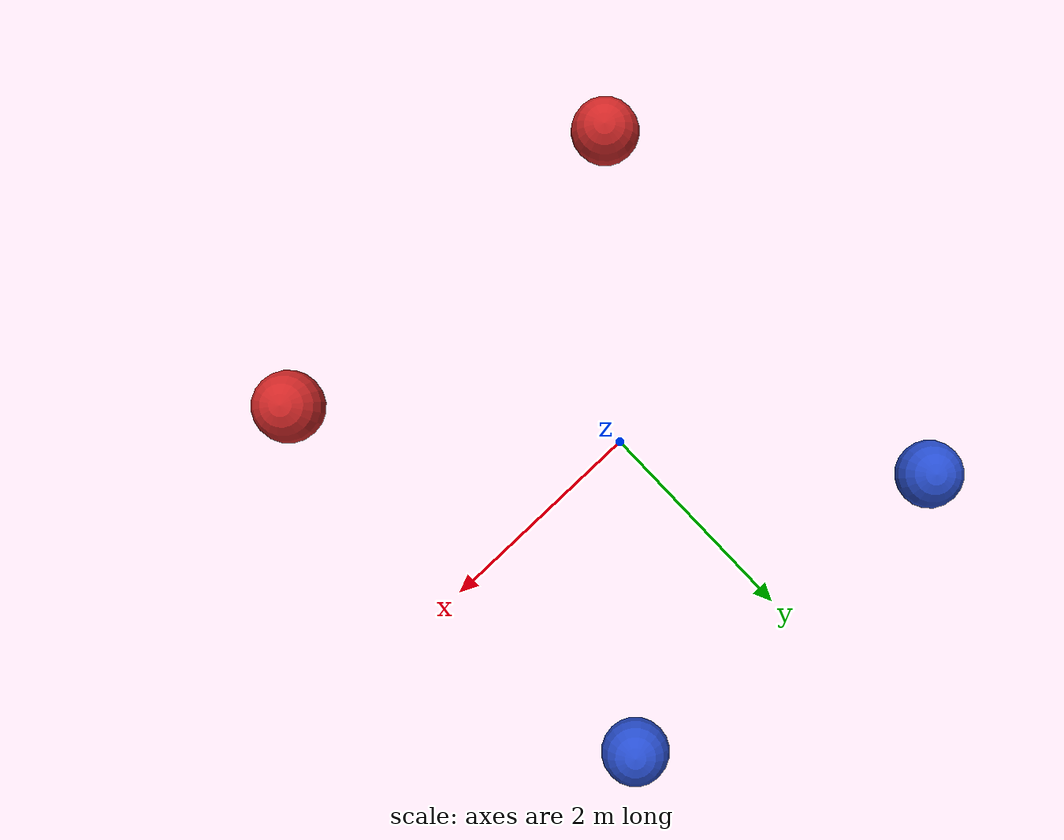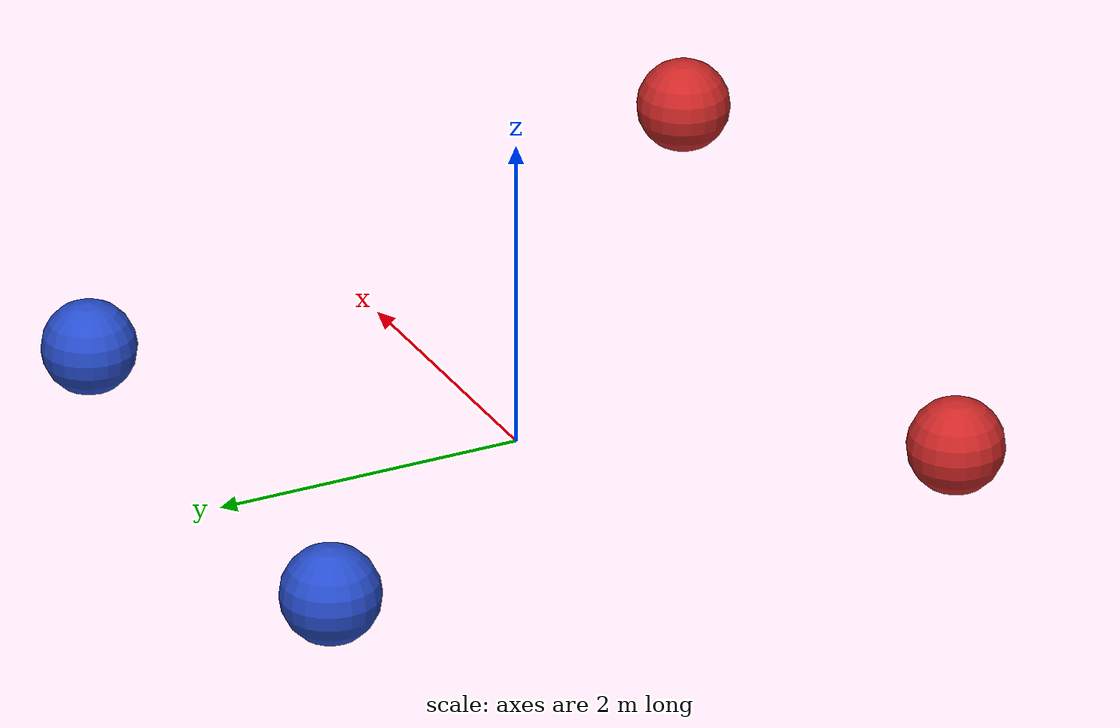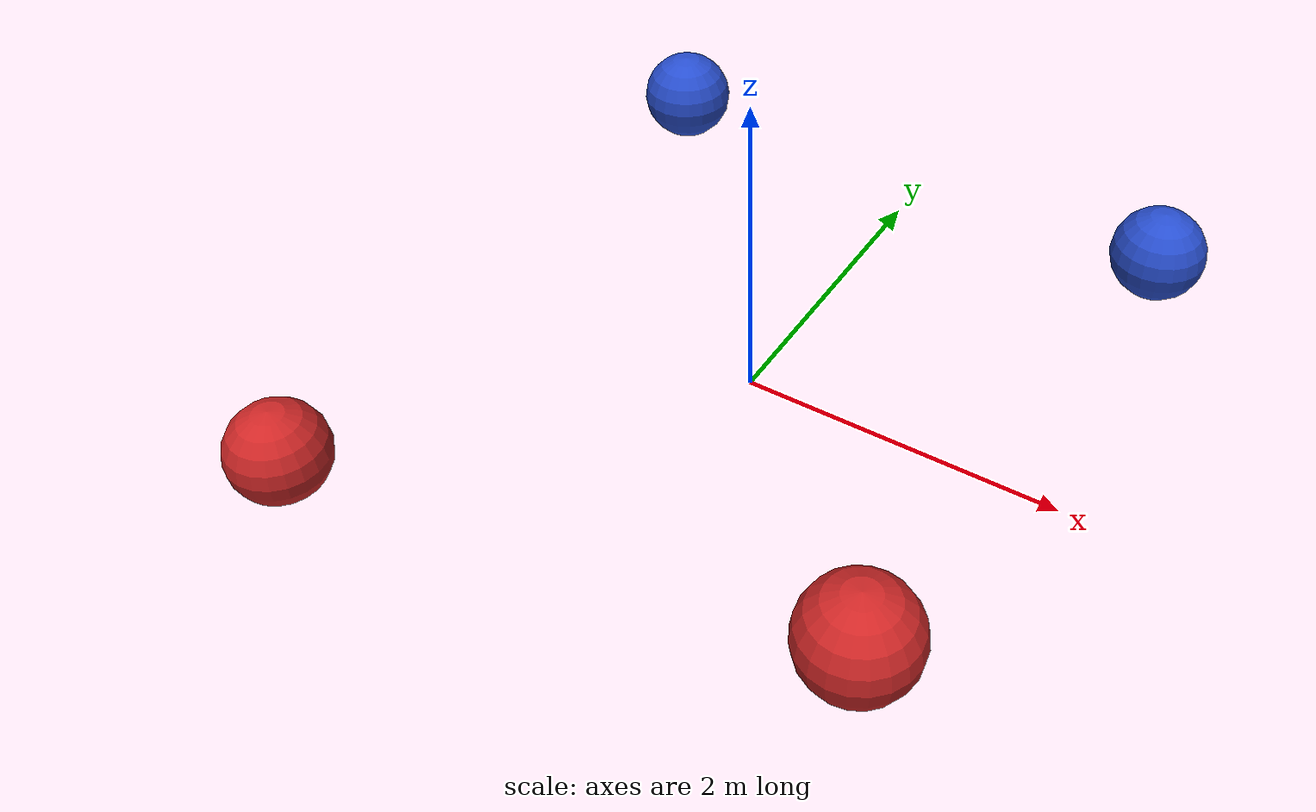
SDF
<sdf version="1.4">
 <world name="default">
  <physics type="ode">
   <max_step_size>0.002</max_step_size>
   <real_time_update_rate>500</real_time_update_rate>
  </physics>
  <include><uri>model://sun</uri></include>
  <include><uri>model://frc_2014_ball_red</uri><pose>1.79 -2.0889 1.125 0 0 0</pose></include>
  <include><uri>model://frc_2014_ball_red</uri><pose>-1.79 -2.0889 0.32 0 0 0</pose></include>
  <include><uri>model://frc_2014_ball_blue</uri><pose>1.79 2.0889 0.31 0 0 0</pose></include>
  <include><uri>model://frc_2014_ball_blue</uri><pose>-1.79 2.0889 0.31 0 0 0</pose></include>
 </world>
</sdf>

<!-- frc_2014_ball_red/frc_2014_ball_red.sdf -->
<sdf version="1.4">
  <model name="frc_2014_ball_red">
    <pose>0 0 0.5 0 0 0</pose>
    <link name="ball">
      <inertial>
        <!-- rough estimate: 1.5 kg spherical shell, radius 30 cm -->
        <mass>1.3671</mass>
        <inertia>
          <!-- xx = yy = zz = 2/5 * mass * radius^2 -->
          <ixx>0.00508</ixx>
          <ixy>0.00</ixy>
          <ixz>0.00</ixz>
          <iyy>0.00508</iyy>
          <iyz>0.00</iyz>
          <izz>0.00508</izz>
        </inertia>
      </inertial>
      <collision name="collision">
        <geometry>
          <sphere>
            <radius>0.3048</radius>
          </sphere>
        </geometry>
        <surface>
          <bounce>
            <restitution_coefficient>0.8</restitution_coefficient>
            <threshold>0</threshold>
          </bounce>
          <contact>
            <ode>
              <max_vel>1000</max_vel>
              <min_depth>0</min_depth>
            </ode>
          </contact>
        </surface>
      </collision>
      <visual name="visual">
        <geometry>
          <sphere>
            <radius>0.3048</radius>
          </sphere>
        </geometry>
        <material>
          <script>
            <uri>file://media/materials/scripts/gazebo.material</uri>
            <name>Gazebo/Red</name>
          </script>
        </material>
      </visual>
      <!-- this is a minimalist way to model the ball's rolling friction -->
      <velocity_decay>
        <linear>0.0</linear>
        <angular>0.01</angular>
      </velocity_decay>
    </link>
  </model>
</sdf>

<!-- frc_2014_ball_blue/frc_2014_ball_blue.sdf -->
<sdf version="1.4">
  <model name="frc_2014_ball_blue">
    <pose>0 0 0.5 0 0 0</pose>
    <link name="ball">
      <inertial>
        <!-- rough estimate: 1.5 kg spherical shell, radius 30 cm -->
        <mass>1.3671</mass>
        <inertia>
          <!-- xx = yy = zz = 2/5 * mass * radius^2 -->
          <ixx>0.00508</ixx>
          <ixy>0.00</ixy>
          <ixz>0.00</ixz>
          <iyy>0.00508</iyy>
          <iyz>0.00</iyz>
          <izz>0.00508</izz>
        </inertia>
      </inertial>
      <collision name="collision">
        <geometry>
          <sphere>
            <radius>0.3048</radius>
          </sphere>
        </geometry>
        <surface>
          <bounce>
            <restitution_coefficient>0.8</restitution_coefficient>
            <threshold>0</threshold>
          </bounce>
          <contact>
            <ode>
              <max_vel>1000</max_vel>
              <min_depth>0</min_depth>
            </ode>
          </contact>
        </surface>
      </collision>
      <visual name="visual">
        <geometry>
          <sphere>
            <radius>0.3048</radius>
          </sphere>
        </geometry>
        <material>
          <script>
            <uri>file://media/materials/scripts/gazebo.material</uri>
            <name>Gazebo/Blue</name>
          </script>
        </material>
      </visual>
      <!-- this is a minimalist way to model the ball's rolling friction -->
      <velocity_decay>
        <linear>0.0</linear>
        <angular>0.01</angular>
      </velocity_decay>
    </link>
  </model>
</sdf>
